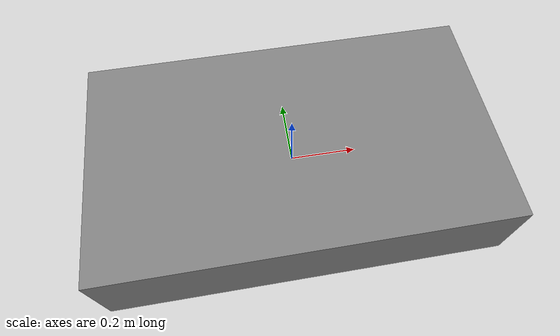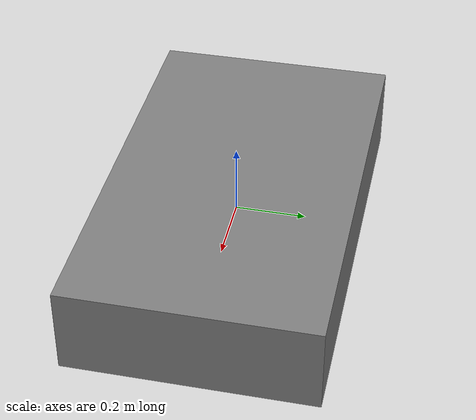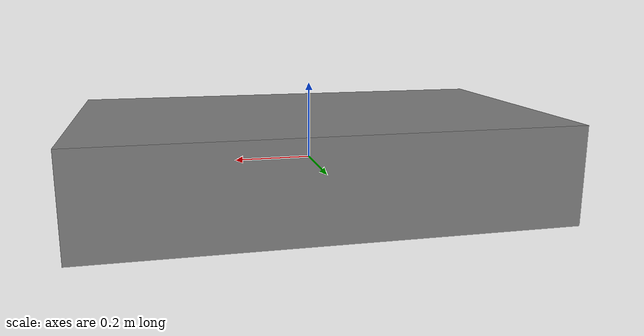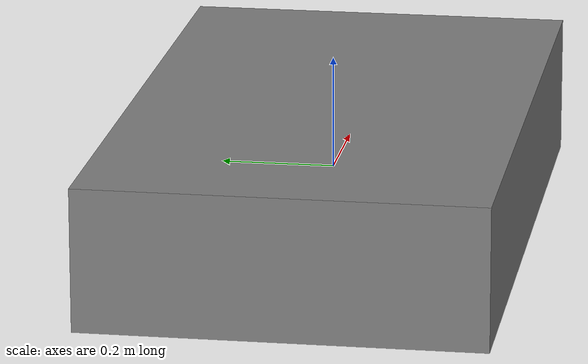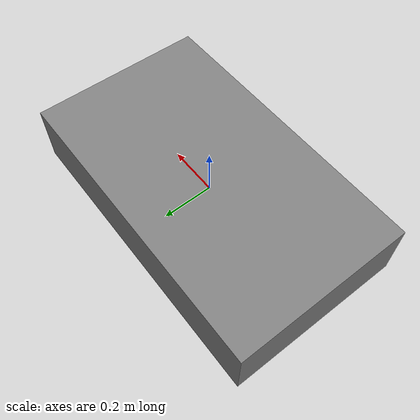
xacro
<?xml version="1.0"?>

<robot xmlns:xacro="http://www.ros.org/wiki/xacro">

<link name="base_link"/>

<link name="chassis_link">

    <visual>
        <geometry>
            <box size="1.2 0.7 0.25"/>
        </geometry>

        <material name="gray">
            <color rgba="0.5 0.5 0.5 1"/>
        </material>

    </visual>

    <collision>
        <geometry>
            <box size="1.2 0.7 0.25"/>
        </geometry>
    </collision>

    <inertial>

        <origin xyz="0 0 0"/>

        <mass value="30"/>

        <inertia
            ixx="2.0"
            iyy="2.0"
            izz="2.0"
            ixy="0"
            ixz="0"
            iyz="0"/>

    </inertial>

</link>

<joint name="base_joint"
       type="fixed">

    <parent link="base_link"/>
    <child link="chassis_link"/>

</joint>

</robot>
